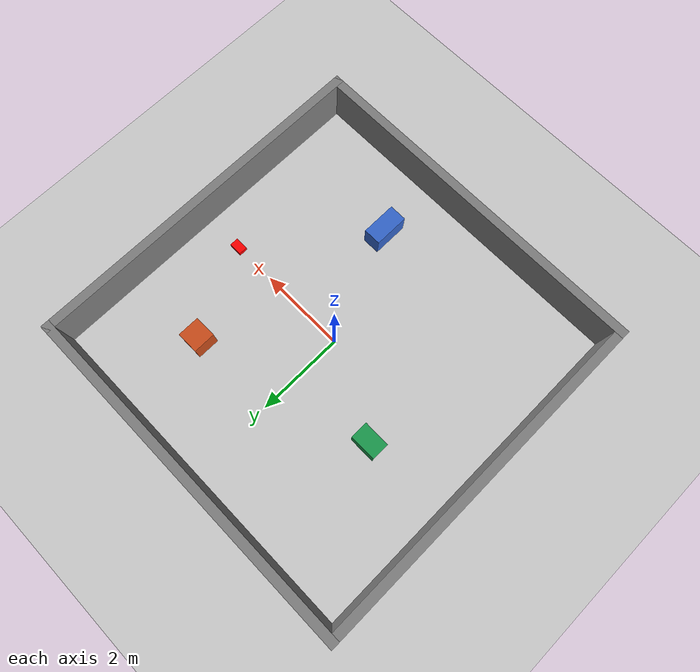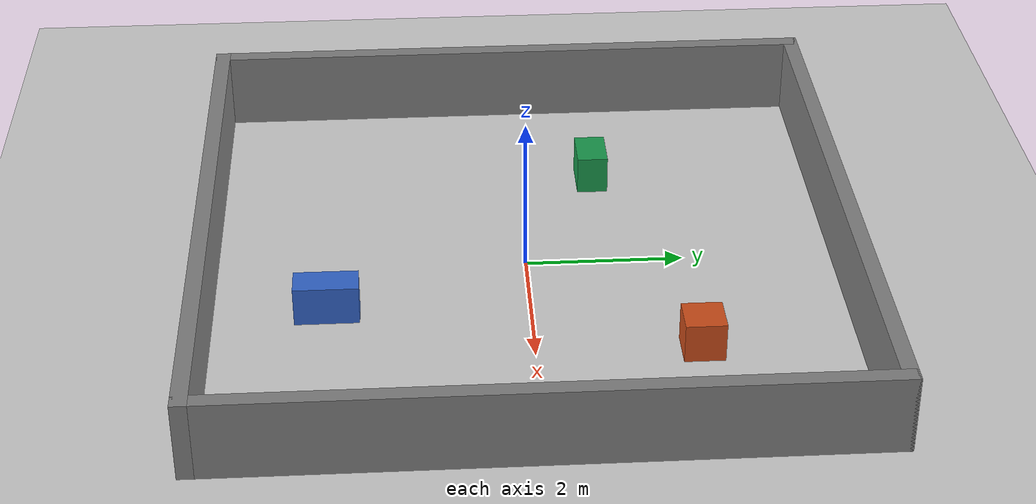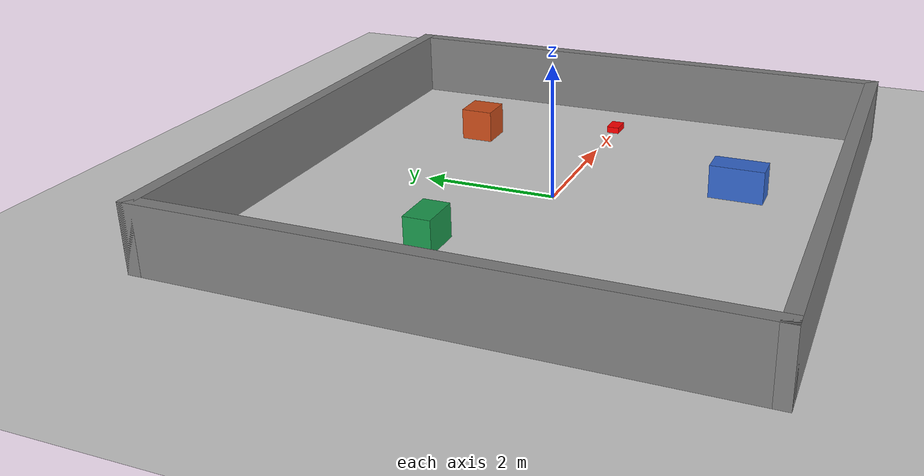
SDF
<?xml version="1.0"?>
<sdf version="1.6">
  <world name="navigation_world">
    <physics type="ode">
      <real_time_update_rate>1000</real_time_update_rate>
      <max_step_size>0.001</max_step_size>
      <real_time_factor>1</real_time_factor>
      <ode><solver><type>quick</type><iters>50</iters><sor>1.0</sor></solver></ode>
    </physics>
    <scene><ambient>0.4 0.4 0.4 1</ambient><background>0.7 0.7 0.7 1</background><shadows>true</shadows></scene>
    <include><uri>model://ground_plane</uri></include>
    <include><uri>model://sun</uri></include>

    <!-- 静态墙壁 (8m x 8m 房间) -->
    <model name="wall_north"><static>true</static><pose>0 4 0.5 0 0 0</pose><link name="link">
      <collision name="collision"><geometry><box><size>8.2 0.2 1.0</size></box></geometry></collision>
      <visual name="visual"><geometry><box><size>8.2 0.2 1.0</size></box></geometry><material><ambient>0.5 0.5 0.5 1</ambient></material></visual>
    </link></model>
    <model name="wall_south"><static>true</static><pose>0 -4 0.5 0 0 0</pose><link name="link">
      <collision name="collision"><geometry><box><size>8.2 0.2 1.0</size></box></geometry></collision>
      <visual name="visual"><geometry><box><size>8.2 0.2 1.0</size></box></geometry><material><ambient>0.5 0.5 0.5 1</ambient></material></visual>
    </link></model>
    <model name="wall_east"><static>true</static><pose>4 0 0.5 0 0 0</pose><link name="link">
      <collision name="collision"><geometry><box><size>0.2 8.2 1.0</size></box></geometry></collision>
      <visual name="visual"><geometry><box><size>0.2 8.2 1.0</size></box></geometry><material><ambient>0.5 0.5 0.5 1</ambient></material></visual>
    </link></model>
    <model name="wall_west"><static>true</static><pose>-4 0 0.5 0 0 0</pose><link name="link">
      <collision name="collision"><geometry><box><size>0.2 8.2 1.0</size></box></geometry></collision>
      <visual name="visual"><geometry><box><size>0.2 8.2 1.0</size></box></geometry><material><ambient>0.5 0.5 0.5 1</ambient></material></visual>
    </link></model>

    <!-- 静态障碍物 -->
    <model name="box_obstacle_1"><static>true</static><pose>2.0 2.0 0.25 0 0 0</pose><link name="link">
      <collision name="collision"><geometry><box><size>0.5 0.5 0.5</size></box></geometry></collision>
      <visual name="visual"><geometry><box><size>0.5 0.5 0.5</size></box></geometry><material><ambient>0.8 0.3 0.1 1</ambient></material></visual>
    </link></model>
    <model name="box_obstacle_2"><static>true</static><pose>-2.0 1.0 0.25 0 0 0</pose><link name="link">
      <collision name="collision"><geometry><box><size>0.6 0.4 0.5</size></box></geometry></collision>
      <visual name="visual"><geometry><box><size>0.6 0.4 0.5</size></box></geometry><material><ambient>0.1 0.6 0.3 1</ambient></material></visual>
    </link></model>
    <model name="box_obstacle_3"><static>true</static><pose>1.0 -2.5 0.25 0 0 0</pose><link name="link">
      <collision name="collision"><geometry><box><size>0.4 0.8 0.5</size></box></geometry></collision>
      <visual name="visual"><geometry><box><size>0.4 0.8 0.5</size></box></geometry><material><ambient>0.2 0.4 0.8 1</ambient></material></visual>
    </link></model>

    <!-- ================== 动态障碍物 (红色方块，planar_move 插件) ================== -->
    <model name="dynamic_obstacle">
      <pose>3.0 0.0 0.05 0 0 0</pose>
      <link name="base">
        <inertial><mass>2.0</mass><inertia><ixx>0.01</ixx><ixy>0</ixy><ixz>0</ixz><iyy>0.01</iyy><iyz>0</iyz><izz>0.02</izz></inertia></inertial>
        <collision name="collision"><geometry><box><size>0.3 0.2 0.1</size></box></geometry></collision>
        <visual name="visual"><geometry><box><size>0.3 0.2 0.1</size></box></geometry><material><ambient>1 0 0 1</ambient></material></visual>
      </link>
      <!-- 无需 joint，planar_move 直接驱动整个模型 -->
      <plugin name="planar_move" filename="libgazebo_ros_planar_move.so">
        <commandTopic>/dynamic_obstacle/cmd_vel</commandTopic>
        <odometryTopic>/dynamic_obstacle/odom</odometryTopic>
        <odometryFrame>odom</odometryFrame>
        <robotBaseFrame>base</robotBaseFrame>
        <publishRate>30</publishRate>
        <covariance_x>0.001</covariance_x>
        <covariance_y>0.001</covariance_y>
        <covariance_yaw>0.001</covariance_yaw>
      </plugin>
    </model>

  </world>
</sdf>
